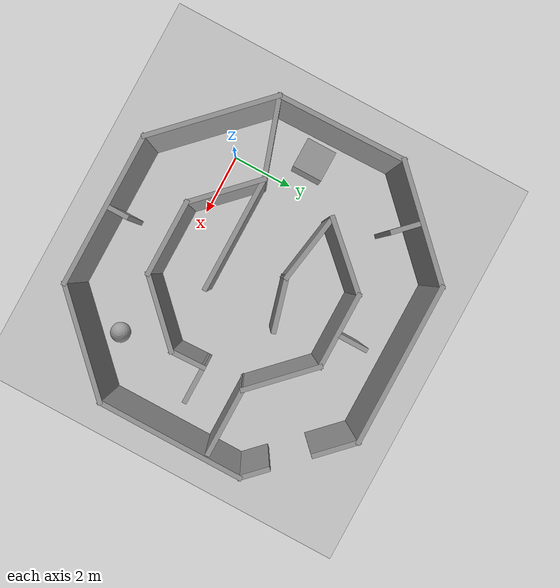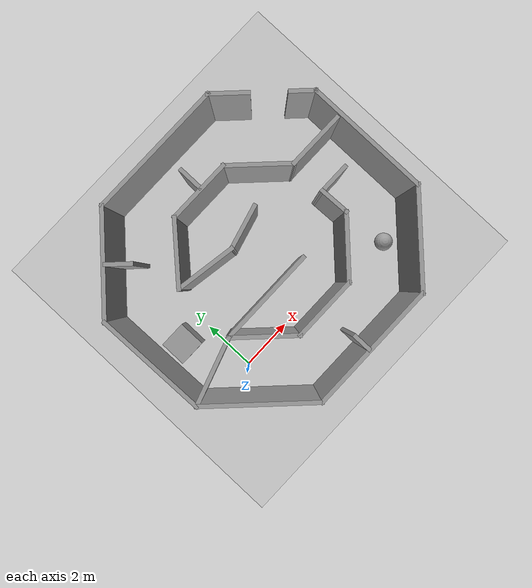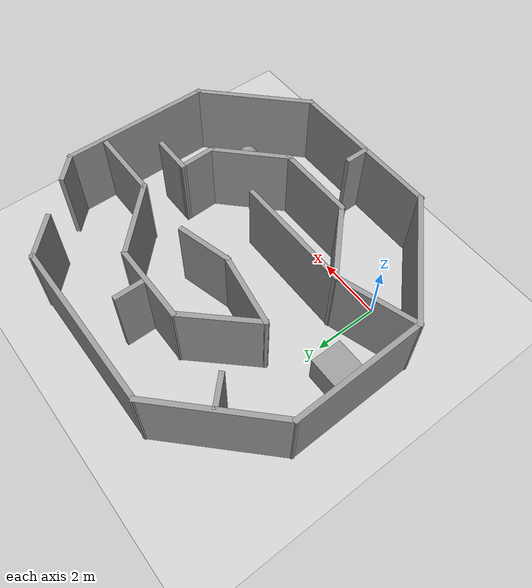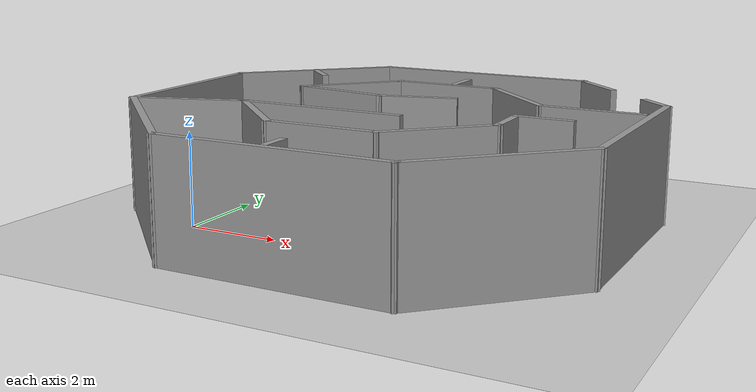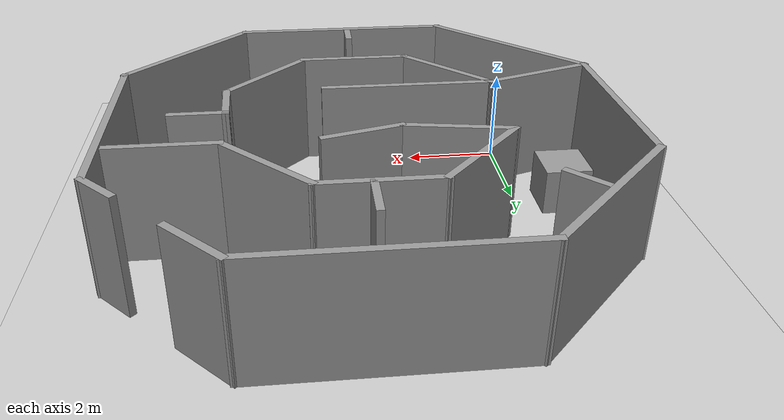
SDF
<sdf version="1.7">
 <world name="default">
  <light name="sun" type="directional">
   <pose>0 0 10 0 -0 0</pose>
   <diffuse>0.8 0.8 0.8 1</diffuse>
   <specular>0.2 0.2 0.2 1</specular>
   <attenuation>
    <range>1000</range>
    <constant>0.9</constant>
    <linear>0.01</linear>
    <quadratic>0.001</quadratic>
   </attenuation>
   <direction>-0.5 0.1 -0.9</direction>
   <spot><inner_angle>0</inner_angle><outer_angle>0</outer_angle><falloff>0</falloff></spot>
  </light>
  <model name="ground_plane">
   <static>1</static>
   <link name="link">
    <collision name="collision">
     <geometry><plane><normal>0 0 1</normal><size>100 100</size></plane></geometry>
     <surface>
      <contact><collide_bitmask>65535</collide_bitmask></contact>
      <friction><ode><mu>100</mu><mu2>50</mu2></ode></friction>
     </surface>
    </collision>
    <visual name="visual">
     <cast_shadows>0</cast_shadows>
     <geometry><plane><normal>0 0 1</normal><size>100 100</size></plane></geometry>
     <material>
      <script><uri>file://media/materials/scripts/gazebo.material</uri><name>Gazebo/Grey</name></script>
     </material>
    </visual>
   </link>
  </model>
  <gravity>0 0 -9.8</gravity>
  <magnetic_field>6e-06 2.3e-05 -4.2e-05</magnetic_field>
  <atmosphere type="adiabatic"/>
  <physics type="ode">
   <max_step_size>0.001</max_step_size>
   <real_time_factor>1</real_time_factor>
   <real_time_update_rate>1000</real_time_update_rate>
  </physics>
  <scene><ambient>0.4 0.4 0.4 1</ambient><background>0.7 0.7 0.7 1</background><shadows>1</shadows></scene>
  <audio><device>default</device></audio>
  <spherical_coordinates>
   <surface_model>EARTH_WGS84</surface_model>
   <latitude_deg>0</latitude_deg>
   <longitude_deg>0</longitude_deg>
   <elevation>0</elevation>
   <heading_deg>0</heading_deg>
  </spherical_coordinates>
  <model name="Laberinto2">
   <pose>3.25007 2.45655 0 0 -0 0</pose>
   <link name="Wall_11">
    <collision name="Wall_11_Collision">
     <geometry><box><size>2.5 0.15 2.5</size></box></geometry>
     <pose>0 0 1.25 0 -0 0</pose>
    </collision>
    <visual name="Wall_11_Visual">
     <pose>0 0 1.25 0 -0 0</pose>
     <geometry><box><size>2.5 0.15 2.5</size></box></geometry>
     <material>
      <script><uri>file://media/materials/scripts/gazebo.material</uri><name>Gazebo/Grey</name></script>
      <ambient>1 1 1 1</ambient>
     </material>
     <meta><layer>0</layer></meta>
    </visual>
    <pose>0.065512 -2.84388 0 0 -0 0</pose>
   </link>
   <link name="Wall_12">
    <collision name="Wall_12_Collision">
     <geometry><box><size>2.5 0.15 2.5</size></box></geometry>
     <pose>0 0 1.25 0 -0 0</pose>
    </collision>
    <visual name="Wall_12_Visual">
     <pose>0 0 1.25 0 -0 0</pose>
     <geometry><box><size>2.5 0.15 2.5</size></box></geometry>
     <material>
      <script><uri>file://media/materials/scripts/gazebo.material</uri><name>Gazebo/Grey</name></script>
      <ambient>1 1 1 1</ambient>
     </material>
     <meta><layer>0</layer></meta>
    </visual>
    <pose>2.07136 -2.01303 0 0 -0 0.785398</pose>
   </link>
   <link name="Wall_16">
    <collision name="Wall_16_Collision">
     <geometry><box><size>2.5 0.15 2.5</size></box></geometry>
     <pose>0 0 1.25 0 -0 0</pose>
    </collision>
    <visual name="Wall_16_Visual">
     <pose>0 0 1.25 0 -0 0</pose>
     <geometry><box><size>2.5 0.15 2.5</size></box></geometry>
     <material>
      <script><uri>file://media/materials/scripts/gazebo.material</uri><name>Gazebo/Grey</name></script>
      <ambient>1 1 1 1</ambient>
     </material>
     <meta><layer>0</layer></meta>
    </visual>
    <pose>2.07136 1.99867 0 0 -0 2.35619</pose>
   </link>
   <link name="Wall_17">
    <collision name="Wall_17_Collision">
     <geometry><box><size>2.5 0.15 2.5</size></box></geometry>
     <pose>0 0 1.25 0 -0 0</pose>
    </collision>
    <visual name="Wall_17_Visual">
     <pose>0 0 1.25 0 -0 0</pose>
     <geometry><box><size>2.5 0.15 2.5</size></box></geometry>
     <material>
      <script><uri>file://media/materials/scripts/gazebo.material</uri><name>Gazebo/Grey</name></script>
      <ambient>1 1 1 1</ambient>
     </material>
     <meta><layer>0</layer></meta>
    </visual>
    <pose>0.065512 2.82952 0 0 -0 3.14159</pose>
   </link>
   <link name="Wall_18">
    <collision name="Wall_18_Collision">
     <geometry><box><size>2.51777 0.15 2.5</size></box></geometry>
     <pose>0 0 1.25 0 -0 0</pose>
    </collision>
    <visual name="Wall_18_Visual">
     <pose>0 0 1.25 0 -0 0</pose>
     <geometry><box><size>2.51777 0.15 2.5</size></box></geometry>
     <material>
      <script><uri>file://media/materials/scripts/gazebo.material</uri><name>Gazebo/Grey</name></script>
      <ambient>1 1 1 1</ambient>
     </material>
     <meta><layer>0</layer></meta>
    </visual>
    <pose>-1.91721 1.96398 0 0 -0 -2.32165</pose>
   </link>
   <link name="Wall_21">
    <collision name="Wall_21_Collision">
     <geometry><box><size>2.5 0.15 2.5</size></box></geometry>
     <pose>0 0 1.25 0 -0 0</pose>
    </collision>
    <visual name="Wall_21_Visual">
     <pose>0 0 1.25 0 -0 0</pose>
     <geometry><box><size>2.5 0.15 2.5</size></box></geometry>
     <material>
      <script><uri>file://media/materials/scripts/gazebo.material</uri><name>Gazebo/Grey</name></script>
      <ambient>1 1 1 1</ambient>
     </material>
     <meta><layer>0</layer></meta>
    </visual>
    <pose>-1.94034 -2.01303 0 0 -0 2.35619</pose>
   </link>
   <link name="Wall_26">
    <collision name="Wall_26_Collision">
     <geometry><box><size>4.25 0.15 2.5</size></box></geometry>
     <pose>0 0 1.25 0 -0 0</pose>
    </collision>
    <visual name="Wall_26_Visual">
     <pose>0 0 1.25 0 -0 0</pose>
     <geometry><box><size>4.25 0.15 2.5</size></box></geometry>
     <material>
      <script><uri>file://media/materials/scripts/gazebo.material</uri><name>Gazebo/Grey</name></script>
      <ambient>1 1 1 1</ambient>
     </material>
     <meta><layer>0</layer></meta>
    </visual>
    <pose>-3.66118 -3.39602 0 0 -0 -0.785398</pose>
   </link>
   <link name="Wall_27">
    <collision name="Wall_27_Collision">
     <geometry><box><size>5 0.15 2.5</size></box></geometry>
     <pose>0 0 1.25 0 -0 0</pose>
    </collision>
    <visual name="Wall_27_Visual">
     <pose>0 0 1.25 0 -0 0</pose>
     <geometry><box><size>5 0.15 2.5</size></box></geometry>
     <material>
      <script><uri>file://media/materials/scripts/gazebo.material</uri><name>Gazebo/Grey</name></script>
      <ambient>1 1 1 1</ambient>
     </material>
     <meta><layer>0</layer></meta>
    </visual>
    <pose>0.213388 -4.84558 0 0 -0 0</pose>
   </link>
   <link name="Wall_28">
    <collision name="Wall_28_Collision">
     <geometry><box><size>3.75 0.15 2.5</size></box></geometry>
     <pose>0 0 1.25 0 -0 0</pose>
    </collision>
    <visual name="Wall_28_Visual">
     <pose>0 0 1.25 0 -0 0</pose>
     <geometry><box><size>3.75 0.15 2.5</size></box></geometry>
     <material>
      <script><uri>file://media/materials/scripts/gazebo.material</uri><name>Gazebo/Grey</name></script>
      <ambient>1 1 1 1</ambient>
     </material>
     <meta><layer>0</layer></meta>
    </visual>
    <pose>3.91118 -3.57279 0 0 -0 0.785398</pose>
   </link>
   <link name="Wall_29">
    <collision name="Wall_29_Collision">
     <geometry><box><size>4.75 0.15 2.5</size></box></geometry>
     <pose>0 0 1.25 0 -0 0</pose>
    </collision>
    <visual name="Wall_29_Visual">
     <pose>0 0 1.25 0 -0 0</pose>
     <geometry><box><size>4.75 0.15 2.5</size></box></geometry>
     <material>
      <script><uri>file://media/materials/scripts/gazebo.material</uri><name>Gazebo/Grey</name></script>
      <ambient>1 1 1 1</ambient>
     </material>
     <meta><layer>0</layer></meta>
    </visual>
    <pose>5.18397 0 0 0 -0 1.5708</pose>
   </link>
   <link name="Wall_32">
    <collision name="Wall_32_Collision">
     <geometry><box><size>5.25 0.15 2.5</size></box></geometry>
     <pose>0 0 1.25 0 -0 0</pose>
    </collision>
    <visual name="Wall_32_Visual">
     <pose>0 0 1.25 0 -0 0</pose>
     <geometry><box><size>5.25 0.15 2.5</size></box></geometry>
     <material>
      <script><uri>file://media/materials/scripts/gazebo.material</uri><name>Gazebo/Grey</name></script>
      <ambient>1 1 1 1</ambient>
     </material>
     <meta><layer>0</layer></meta>
    </visual>
    <pose>0.088388 4.84558 0 0 -0 3.14159</pose>
   </link>
   <link name="Wall_33">
    <collision name="Wall_33_Collision">
     <geometry><box><size>4 0.15 2.5</size></box></geometry>
     <pose>0 0 1.25 0 -0 0</pose>
    </collision>
    <visual name="Wall_33_Visual">
     <pose>0 0 1.25 0 -0 0</pose>
     <geometry><box><size>4 0.15 2.5</size></box></geometry>
     <material>
      <script><uri>file://media/materials/scripts/gazebo.material</uri><name>Gazebo/Grey</name></script>
      <ambient>1 1 1 1</ambient>
     </material>
     <meta><layer>0</layer></meta>
    </visual>
    <pose>-3.82279 3.4844 0 0 -0 -2.35619</pose>
   </link>
   <link name="Wall_34">
    <collision name="Wall_34_Collision">
     <geometry><box><size>4.22033 0.15 2.5</size></box></geometry>
     <pose>0 0 1.25 0 -0 0</pose>
    </collision>
    <visual name="Wall_34_Visual">
     <pose>0 0 1.25 0 -0 0</pose>
     <geometry><box><size>4.22033 0.15 2.5</size></box></geometry>
     <material>
      <script><uri>file://media/materials/scripts/gazebo.material</uri><name>Gazebo/Grey</name></script>
      <ambient>1 1 1 1</ambient>
     </material>
     <meta><layer>0</layer></meta>
    </visual>
    <pose>-5.14736 0.088388 0 0 -0 -1.55281</pose>
   </link>
   <link name="Wall_36">
    <collision name="Wall_36_Collision">
     <geometry><box><size>2.61123 0.15 2.5</size></box></geometry>
     <pose>0 0 1.25 0 -0 0</pose>
    </collision>
    <visual name="Wall_36_Visual">
     <pose>0 0 1.25 0 -0 0</pose>
     <geometry><box><size>2.61123 0.15 2.5</size></box></geometry>
     <material>
      <script><uri>file://media/materials/scripts/gazebo.material</uri><name>Gazebo/Grey</name></script>
      <ambient>1 1 1 1</ambient>
     </material>
     <meta><layer>0</layer></meta>
    </visual>
    <pose>-3.94097 -1.56431 0 0 -0 0.315743</pose>
   </link>
   <link name="Wall_38">
    <collision name="Wall_38_Collision">
     <geometry><box><size>0.75 0.15 2.5</size></box></geometry>
     <pose>0 0 1.25 0 -0 0</pose>
    </collision>
    <visual name="Wall_38_Visual">
     <pose>0 0 1.25 0 -0 0</pose>
     <geometry><box><size>0.75 0.15 2.5</size></box></geometry>
     <material>
      <script><uri>file://media/materials/scripts/gazebo.material</uri><name>Gazebo/Grey</name></script>
      <ambient>1 1 1 1</ambient>
     </material>
     <meta><layer>0</layer></meta>
    </visual>
    <pose>0.093637 -4.49151 0 0 -0 1.5708</pose>
   </link>
   <link name="Wall_44">
    <collision name="Wall_44_Collision">
     <geometry><box><size>1.5 0.15 2.5</size></box></geometry>
     <pose>0 0 1.25 0 -0 0</pose>
    </collision>
    <visual name="Wall_44_Visual">
     <pose>0 0 1.25 0 -0 0</pose>
     <geometry><box><size>1.5 0.15 2.5</size></box></geometry>
     <material>
      <script><uri>file://media/materials/scripts/gazebo.material</uri><name>Gazebo/Grey</name></script>
      <ambient>1 1 1 1</ambient>
     </material>
     <meta><layer>0</layer></meta>
    </visual>
    <pose>3.11569 4.36829 0 0 -0 -0.785398</pose>
   </link>
   <link name="Wall_46">
    <collision name="Wall_46_Collision">
     <geometry><box><size>1 0.15 2.5</size></box></geometry>
     <pose>0 0 1.25 0 -0 0</pose>
    </collision>
    <visual name="Wall_46_Visual">
     <pose>0 0 1.25 0 -0 0</pose>
     <geometry><box><size>1 0.15 2.5</size></box></geometry>
     <material>
      <script><uri>file://media/materials/scripts/gazebo.material</uri><name>Gazebo/Grey</name></script>
      <ambient>1 1 1 1</ambient>
     </material>
     <meta><layer>0</layer></meta>
    </visual>
    <pose>4.88345 2.60052 0 0 -0 2.35619</pose>
   </link>
   <link name="Wall_50">
    <collision name="Wall_50_Collision">
     <geometry><box><size>1 0.15 2.5</size></box></geometry>
     <pose>0 0 1.25 0 -0 0</pose>
    </collision>
    <visual name="Wall_50_Visual">
     <pose>0 0 1.25 0 -0 0</pose>
     <geometry><box><size>1 0.15 2.5</size></box></geometry>
     <material>
      <script><uri>file://media/materials/scripts/gazebo.material</uri><name>Gazebo/Grey</name></script>
      <ambient>1 1 1 1</ambient>
     </material>
     <meta><layer>0</layer></meta>
    </visual>
    <pose>-3.49178 3.11933 0 0 -0 -0.785398</pose>
   </link>
   <link name="Wall_58">
    <collision name="Wall_58_Collision">
     <geometry><box><size>2.25 0.15 2.5</size></box></geometry>
     <pose>0 0 1.25 0 -0 0</pose>
    </collision>
    <visual name="Wall_58_Visual">
     <pose>0 0 1.25 0 -0 0</pose>
     <geometry><box><size>2.25 0.15 2.5</size></box></geometry>
     <material>
      <script><uri>file://media/materials/scripts/gazebo.material</uri><name>Gazebo/Grey</name></script>
      <ambient>1 1 1 1</ambient>
     </material>
     <meta><layer>0</layer></meta>
    </visual>
    <pose>3.95221 1.16782 0 0 -0 0</pose>
   </link>
   <link name="Wall_60">
    <collision name="Wall_60_Collision">
     <geometry><box><size>1.19044 0.15 2.5</size></box></geometry>
     <pose>0 0 1.25 0 -0 0</pose>
    </collision>
    <visual name="Wall_60_Visual">
     <pose>0 0 1.25 0 -0 0</pose>
     <geometry><box><size>1.19044 0.15 2.5</size></box></geometry>
     <material>
      <script><uri>file://media/materials/scripts/gazebo.material</uri><name>Gazebo/Grey</name></script>
      <ambient>1 1 1 1</ambient>
     </material>
     <meta><layer>0</layer></meta>
    </visual>
    <pose>2.88576 -0.662219 0 0 -0 -1.53917</pose>
   </link>
   <link name="Wall_62">
    <collision name="Wall_62_Collision">
     <geometry><box><size>1.25 0.15 2.5</size></box></geometry>
     <pose>0 0 1.25 0 -0 0</pose>
    </collision>
    <visual name="Wall_62_Visual">
     <pose>0 0 1.25 0 -0 0</pose>
     <geometry><box><size>1.25 0.15 2.5</size></box></geometry>
     <material>
      <script><uri>file://media/materials/scripts/gazebo.material</uri><name>Gazebo/Grey</name></script>
      <ambient>1 1 1 1</ambient>
     </material>
     <meta><layer>0</layer></meta>
    </visual>
    <pose>3.41931 -0.142259 0 0 -0 0</pose>
   </link>
   <link name="Wall_68">
    <collision name="Wall_68_Collision">
     <geometry><box><size>2.31031 0.15 2.5</size></box></geometry>
     <pose>0 0 1.25 0 -0 0</pose>
    </collision>
    <visual name="Wall_68_Visual">
     <pose>0 0 1.25 0 -0 0</pose>
     <geometry><box><size>2.31031 0.15 2.5</size></box></geometry>
     <material>
      <script><uri>file://media/materials/scripts/gazebo.material</uri><name>Gazebo/Grey</name></script>
      <ambient>1 1 1 1</ambient>
     </material>
     <meta><layer>0</layer></meta>
    </visual>
    <pose>-1.63623 0.921536 0 0 -0 2.97708</pose>
   </link>
   <link name="Wall_75">
    <collision name="Wall_75_Collision">
     <geometry><box><size>1 0.15 2.5</size></box></geometry>
     <pose>0 0 1.25 0 -0 0</pose>
    </collision>
    <visual name="Wall_75_Visual">
     <pose>0 0 1.25 0 -0 0</pose>
     <geometry><box><size>1 0.15 2.5</size></box></geometry>
     <material>
      <script><uri>file://media/materials/scripts/gazebo.material</uri><name>Gazebo/Grey</name></script>
      <ambient>1 1 1 1</ambient>
     </material>
     <meta><layer>0</layer></meta>
    </visual>
    <pose>0.18616 3.31285 0 0 -0 1.5708</pose>
   </link>
   <link name="Wall_77">
    <collision name="Wall_77_Collision">
     <geometry><box><size>3.75 0.15 2.5</size></box></geometry>
     <pose>0 0 1.25 0 -0 0</pose>
    </collision>
    <visual name="Wall_77_Visual">
     <pose>0 0 1.25 0 -0 0</pose>
     <geometry><box><size>3.75 0.15 2.5</size></box></geometry>
     <material>
      <script><uri>file://media/materials/scripts/gazebo.material</uri><name>Gazebo/Grey</name></script>
      <ambient>1 1 1 1</ambient>
     </material>
     <meta><layer>0</layer></meta>
    </visual>
    <pose>-0.971189 -1.18218 0 0 -0 0</pose>
   </link>
   <link name="Wall_79">
    <collision name="Wall_79_Collision">
     <geometry><box><size>1.75 0.15 2.5</size></box></geometry>
     <pose>0 0 1.25 0 -0 0</pose>
    </collision>
    <visual name="Wall_79_Visual">
     <pose>0 0 1.25 0 -0 0</pose>
     <geometry><box><size>1.75 0.15 2.5</size></box></geometry>
     <material>
      <script><uri>file://media/materials/scripts/gazebo.material</uri><name>Gazebo/Grey</name></script>
      <ambient>1 1 1 1</ambient>
     </material>
     <meta><layer>0</layer></meta>
    </visual>
    <pose>0.202086 0.951697 0 0 -0 0.261799</pose>
   </link>
   <static>1</static>
  </model>
  <model name="unit_box">
   <pose>-0.989511 2.28793 0.499995 0 1e-05 0</pose>
   <link name="link">
    <inertial>
     <mass>1</mass>
     <inertia>
      <ixx>0.166667</ixx>
      <ixy>0</ixy>
      <ixz>0</ixz>
      <iyy>0.166667</iyy>
      <iyz>0</iyz>
      <izz>0.166667</izz>
     </inertia>
    </inertial>
    <collision name="collision"><geometry><box><size>1 1 1</size></box></geometry></collision>
    <visual name="visual">
     <geometry><box><size>1 1 1</size></box></geometry>
     <material>
      <script><name>Gazebo/Grey</name><uri>file://media/materials/scripts/gazebo.material</uri></script>
     </material>
    </visual>
   </link>
  </model>
  <model name="unit_sphere">
   <pose>6.72114 -0.538302 0.5 0 -0 0</pose>
   <link name="link">
    <inertial>
     <mass>1</mass>
     <inertia><ixx>0.1</ixx><ixy>0</ixy><ixz>0</ixz><iyy>0.1</iyy><iyz>0</iyz><izz>0.1</izz></inertia>
    </inertial>
    <collision name="collision"><geometry><sphere><radius>0.33</radius></sphere></geometry></collision>
    <visual name="visual">
     <geometry><sphere><radius>0.33</radius></sphere></geometry>
     <material>
      <script><name>Gazebo/Grey</name><uri>file://media/materials/scripts/gazebo.material</uri></script>
     </material>
    </visual>
   </link>
  </model>
 </world>
</sdf>
